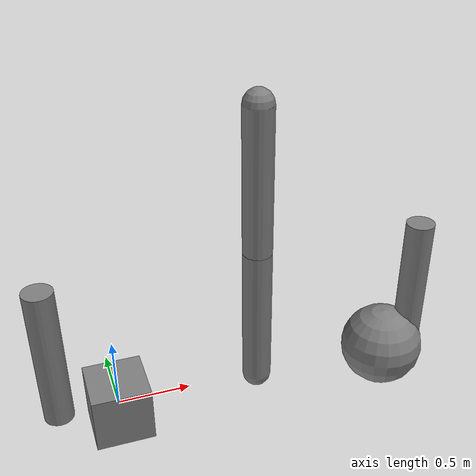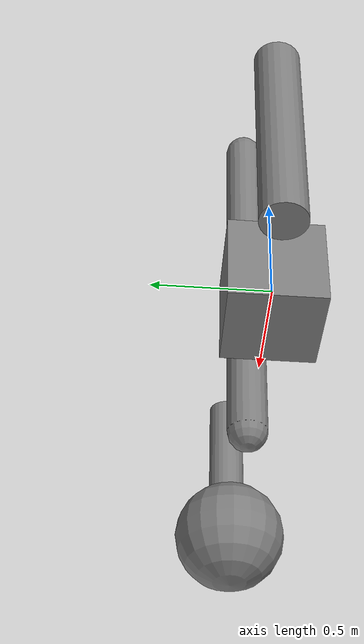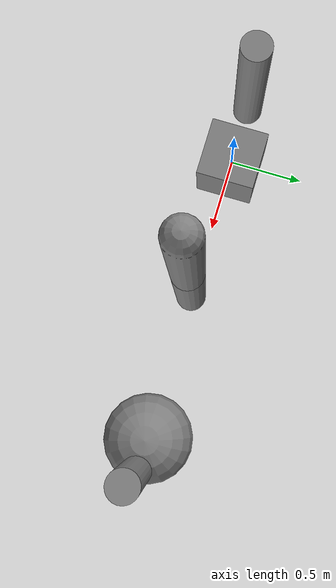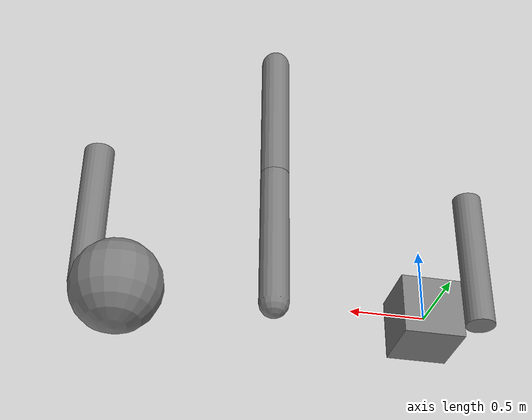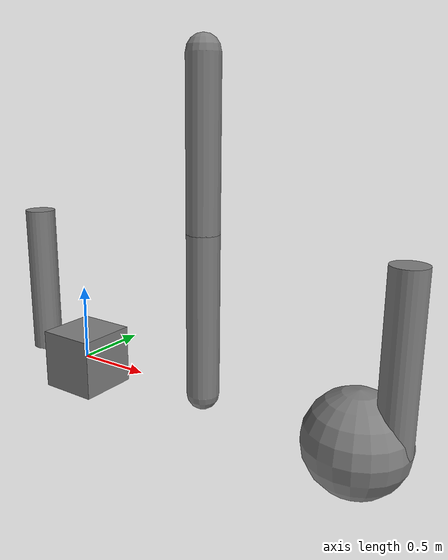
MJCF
<mujoco>
  <custom>
    <numeric name="duration" data="0.1"/>
  </custom>

  <option>
    <flag sleep="enable"/>
  </option>

  <worldbody>
    <body>
      <geom type="box" size=".2 .2 .2"/>
      <body pos="-.4 0 0">
        <geom type="cylinder" size="0.1" fromto="0 0 0 0 0 1"/>
      </body>
    </body>

    <body pos="1 0 0">
      <geom type="capsule" size="0.1" fromto="0 0 0 0 0 1"/>
      <body pos="0 0 1">
        <geom type="capsule" size="0.1" fromto="0 0 0 0 0 1"/>
        <site/>
      </body>
    </body>

    <body pos="2 0 0">
      <geom size=".3"/>
      <body pos=".2 0 0">
        <geom type="cylinder" size="0.1" fromto="0 0 0 0 0 1"/>
        <camera/>
        <light pos="0 0 1.5"/>
      </body>
    </body>
  </worldbody>
</mujoco>
